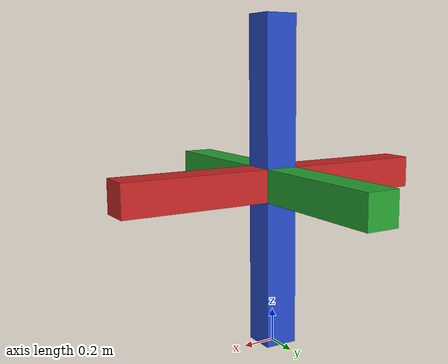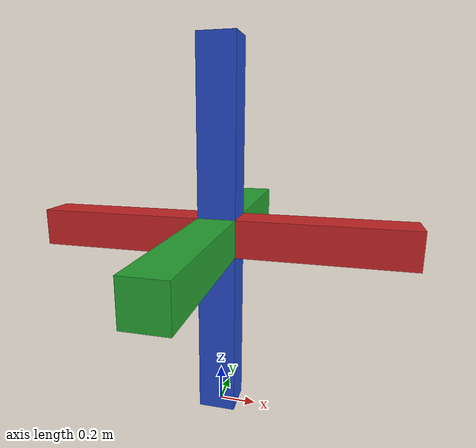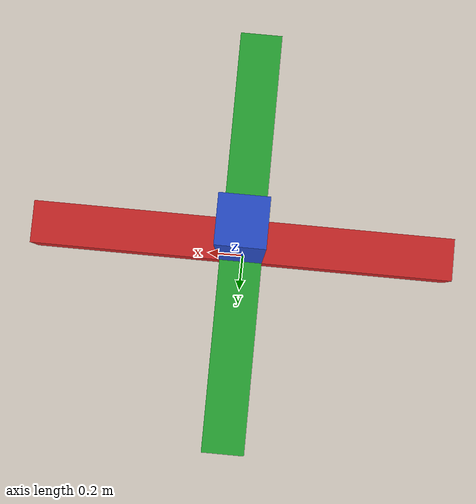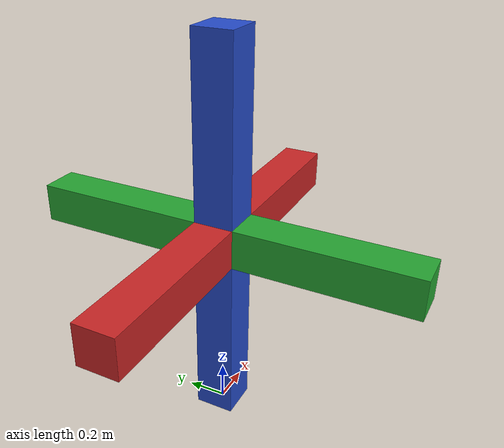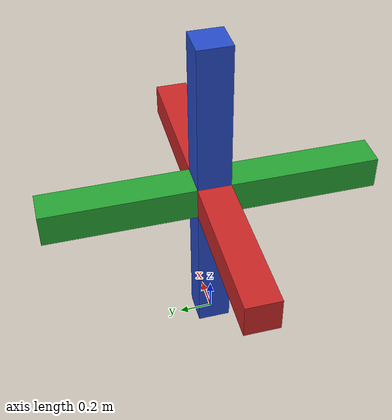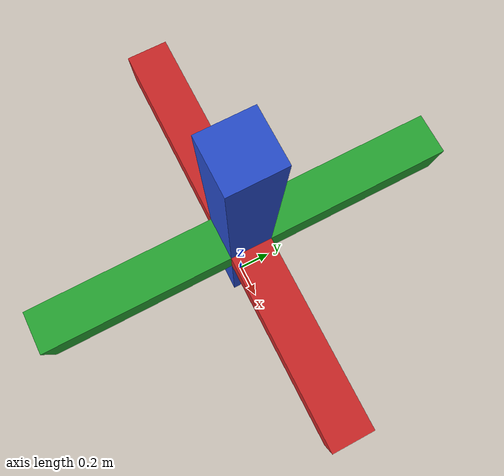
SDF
<?xml version="1.0" ?>
<sdf version="1.5">
  <model name="chech">
    <static>false</static>
    <link name="link">

<collision name="chechXcollision">
<pose>0.0 0.0 1.0 0.0 0.0 0.0</pose>
<geometry> <box> <size>2.0 0.2 0.2</size> </box> </geometry>
</collision>
<visual name="chechXvisual">
<pose>0.0 0.0 1.0 0.0 0.0 0.0</pose>
<geometry> <box> <size>2.0 0.2 0.2</size> </box> </geometry>
<material> <script> <uri>file://media/materials/scripts/gazebo.material</uri>
<name>Gazebo/Red</name> </script> </material>
</visual>

<collision name="chechYcollision">
<pose>0.0 0.0 1.0 0.0 0.0 0.0</pose>
<geometry> <box> <size>0.2 2.0 0.2</size> </box> </geometry>
</collision>
<visual name="chechYvisual">
<pose>0.0 0.0 1.0 0.0 0.0 0.0</pose>
<geometry> <box> <size>0.2 2.0 0.2</size> </box> </geometry>
<material> <script> <uri>file://media/materials/scripts/gazebo.material</uri>
<name>Gazebo/Green</name> </script> </material>
</visual>

<collision name="chechZcollision">
<pose>0.0 0.0 1.0 0.0 0.0 0.0</pose>
<geometry> <box> <size>0.2 0.2 2.0</size> </box> </geometry>
</collision>
<visual name="chechZvisual">
<pose>0.0 0.0 1.0 0.0 0.0 0.0</pose>
<geometry> <box> <size>0.2 0.2 2.0</size> </box> </geometry>
<material> <script> <uri>file://media/materials/scripts/gazebo.material</uri>
<name>Gazebo/Blue</name> </script> </material>
</visual>

    </link>
  </model>
</sdf>
